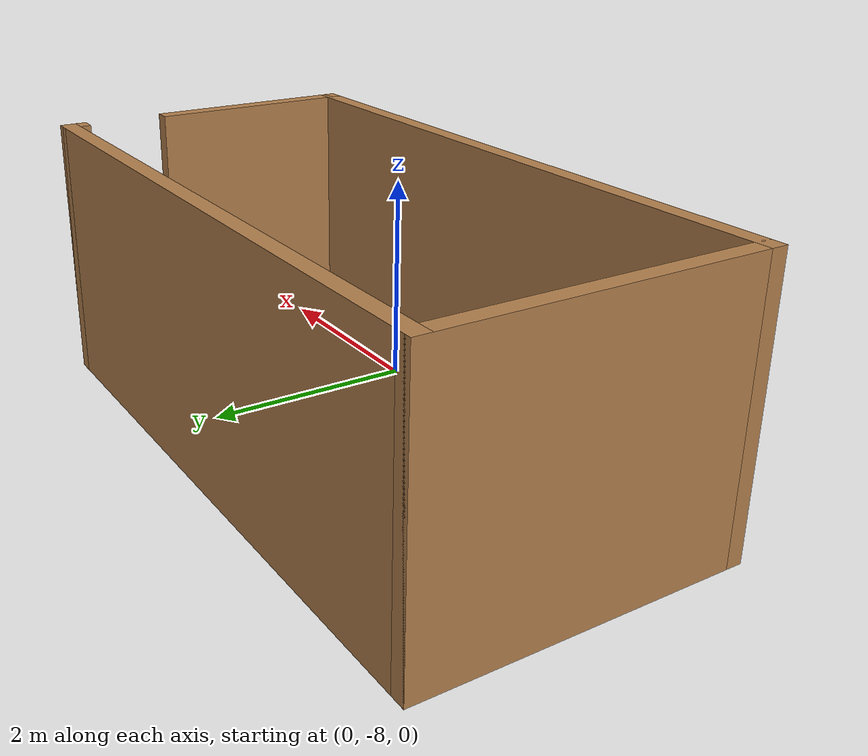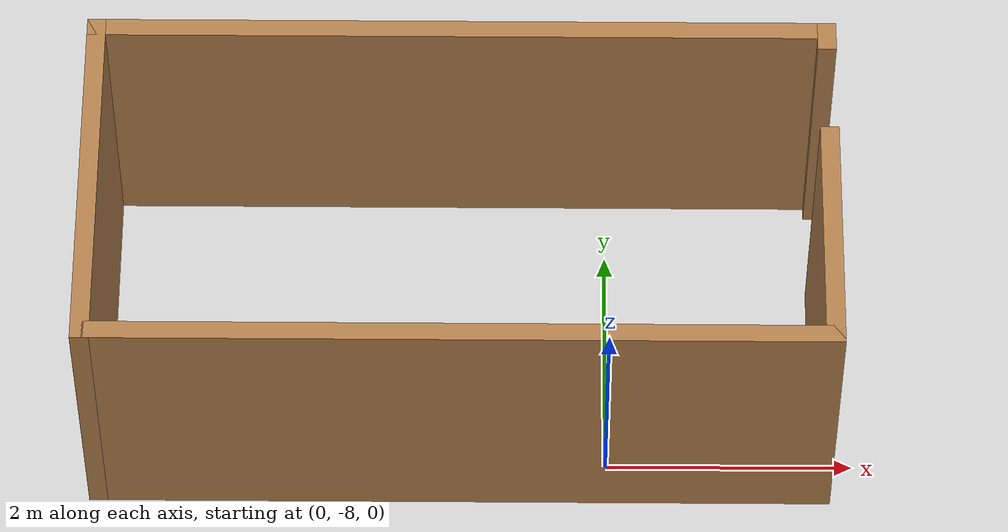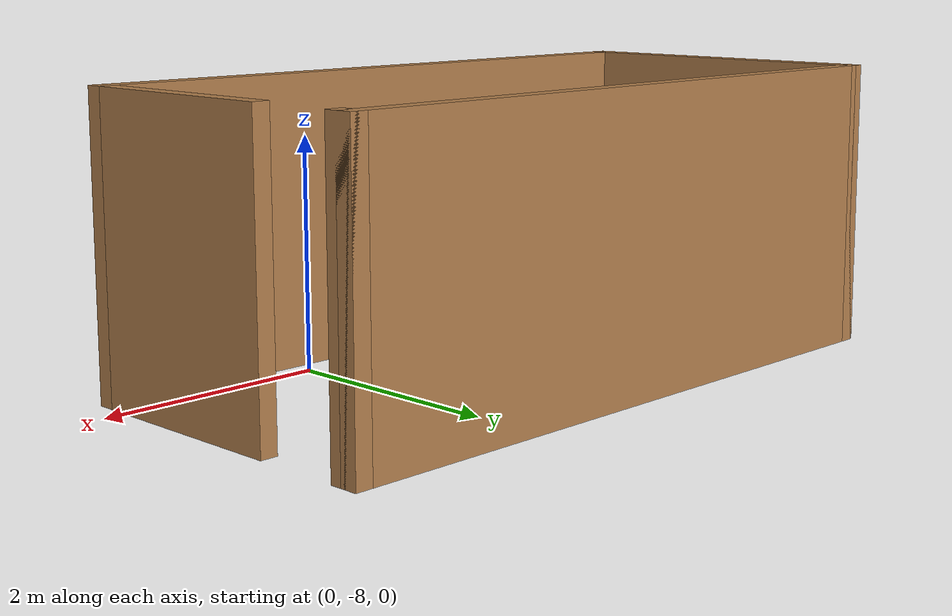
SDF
<?xml version='1.0'?>
<sdf version='1.6'>
  <model name='wood_house'>
    <pose frame=''>-1.185 -6.835 0 0 -0 0</pose>
    <link name='Wall_14'>
      <collision name='Wall_14_Collision'>
        <geometry>
          <box>
            <size>2 0.15 2.5</size>
          </box>
        </geometry>
        <pose frame=''>0 0 1.25 0 -0 0</pose>
      </collision>
      <visual name='Wall_14_Visual'>
        <pose frame=''>0 0 1.25 0 -0 0</pose>
        <geometry>
          <box>
            <size>2 0.15 2.5</size>
          </box>
        </geometry>
        <material>
          <script>
            <uri>file://media/materials/scripts/gazebo.material</uri>
            <name>Gazebo/Wood</name>
          </script>
          <ambient>1 1 1 1</ambient>
        </material>
        <meta>
          <layer>0</layer>
        </meta>
      </visual>
      <pose frame=''>2.925 -0.5 0 0 -0 -1.5708</pose>
    </link>
    <link name='Wall_15'>
      <collision name='Wall_15_Collision'>
        <geometry>
          <box>
            <size>6 0.15 2.5</size>
          </box>
        </geometry>
        <pose frame=''>0 0 1.25 0 -0 0</pose>
      </collision>
      <visual name='Wall_15_Visual'>
        <pose frame=''>0 0 1.25 0 -0 0</pose>
        <geometry>
          <box>
            <size>6 0.15 2.5</size>
          </box>
        </geometry>
        <material>
          <script>
            <uri>file://media/materials/scripts/gazebo.material</uri>
            <name>Gazebo/Wood</name>
          </script>
          <ambient>1 1 1 1</ambient>
        </material>
        <meta>
          <layer>0</layer>
        </meta>
      </visual>
      <pose frame=''>0 -1.425 0 0 -0 3.14159</pose>
    </link>
    <link name='Wall_16'>
      <collision name='Wall_16_Collision'>
        <geometry>
          <box>
            <size>3 0.15 2.5</size>
          </box>
        </geometry>
        <pose frame=''>0 0 1.25 0 -0 0</pose>
      </collision>
      <visual name='Wall_16_Visual'>
        <pose frame=''>0 0 1.25 0 -0 0</pose>
        <geometry>
          <box>
            <size>3 0.15 2.5</size>
          </box>
        </geometry>
        <material>
          <script>
            <uri>file://media/materials/scripts/gazebo.material</uri>
            <name>Gazebo/Wood</name>
          </script>
          <ambient>1 1 1 1</ambient>
        </material>
        <meta>
          <layer>0</layer>
        </meta>
      </visual>
      <pose frame=''>-2.925 0 0 0 -0 1.5708</pose>
    </link>
    <link name='Wall_17'>
      <collision name='Wall_17_Collision'>
        <geometry>
          <box>
            <size>6 0.15 2.5</size>
          </box>
        </geometry>
        <pose frame=''>0 0 1.25 0 -0 0</pose>
      </collision>
      <visual name='Wall_17_Visual'>
        <pose frame=''>0 0 1.25 0 -0 0</pose>
        <geometry>
          <box>
            <size>6 0.15 2.5</size>
          </box>
        </geometry>
        <material>
          <script>
            <uri>file://media/materials/scripts/gazebo.material</uri>
            <name>Gazebo/Wood</name>
          </script>
          <ambient>1 1 1 1</ambient>
        </material>
        <meta>
          <layer>0</layer>
        </meta>
      </visual>
      <pose frame=''>0 1.425 0 0 -0 0</pose>
    </link>
    <link name='Wall_18'>
      <collision name='Wall_18_Collision'>
        <geometry>
          <box>
            <size>0.25 0.15 2.5</size>
          </box>
        </geometry>
        <pose frame=''>0 0 1.25 0 -0 0</pose>
      </collision>
      <visual name='Wall_18_Visual'>
        <pose frame=''>0 0 1.25 0 -0 0</pose>
        <geometry>
          <box>
            <size>0.25 0.15 2.5</size>
          </box>
        </geometry>
        <material>
          <script>
            <uri>file://media/materials/scripts/gazebo.material</uri>
            <name>Gazebo/Wood</name>
          </script>
          <ambient>1 1 1 1</ambient>
        </material>
        <meta>
          <layer>0</layer>
        </meta>
      </visual>
      <pose frame=''>2.925 1.375 0 0 -0 -1.5708</pose>
    </link>
    <static>1</static>
  </model>
</sdf>
